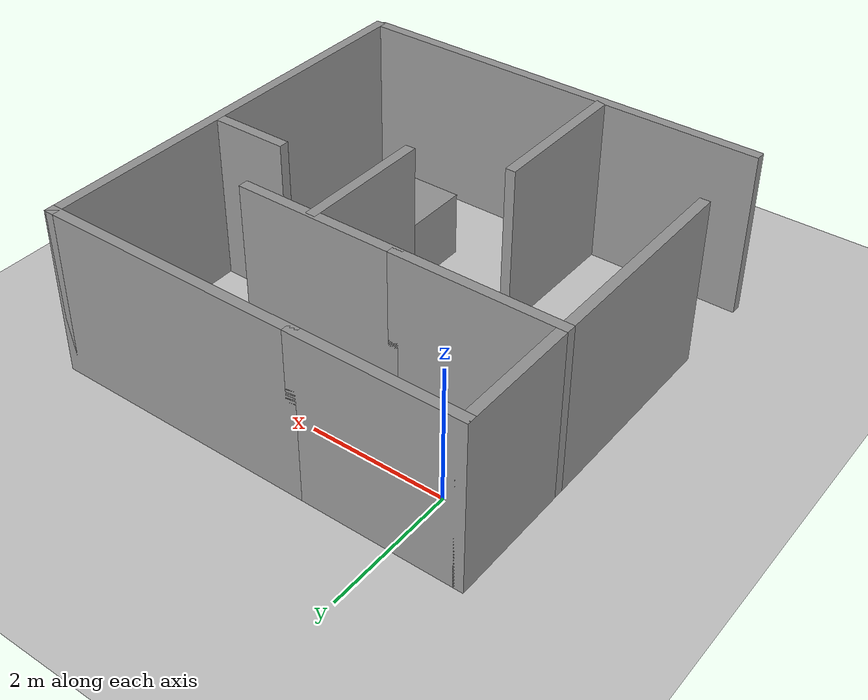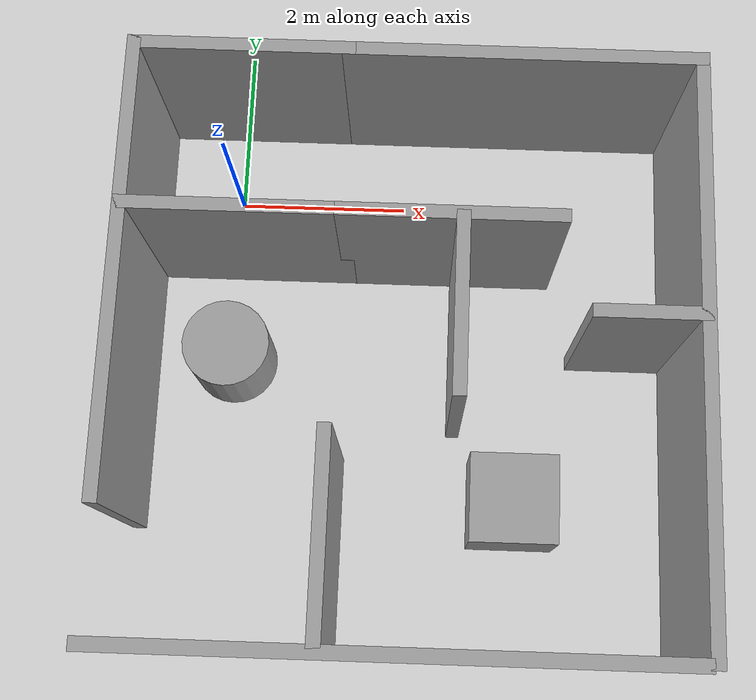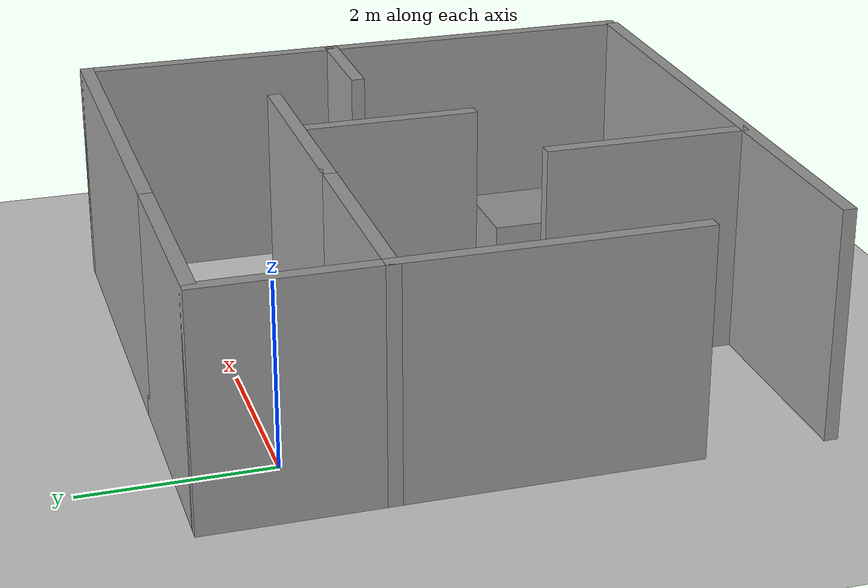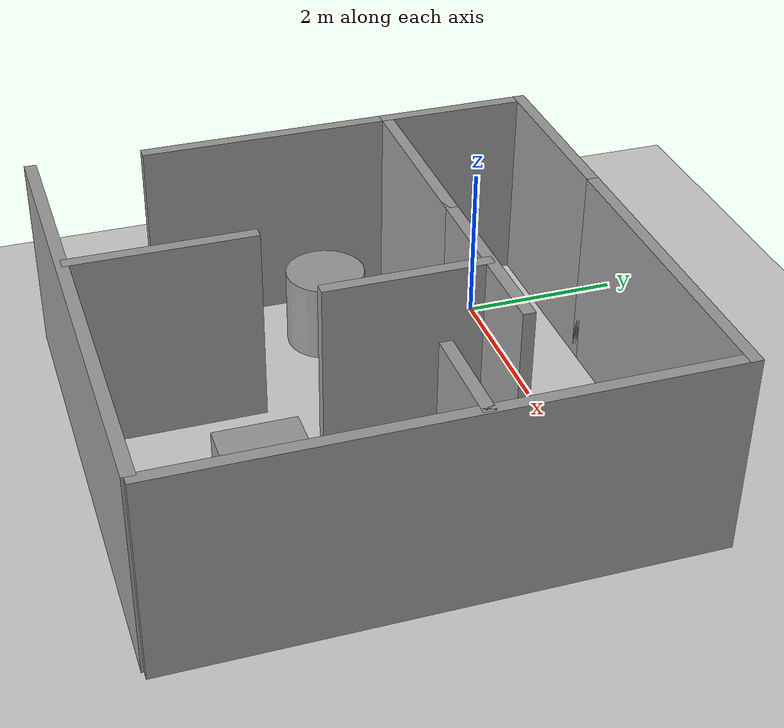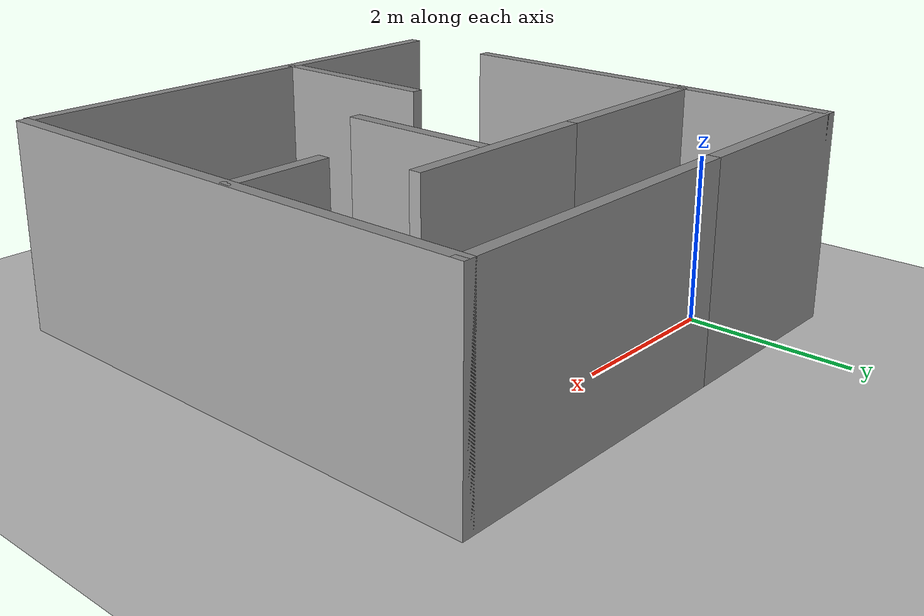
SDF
<sdf version="1.6">
 <world name="default">
  <light name="sun" type="directional">
   <pose>0 0 10 0 -0 0</pose>
   <diffuse>0.8 0.8 0.8 1</diffuse>
   <specular>0.2 0.2 0.2 1</specular>
   <attenuation>
    <range>1000</range>
    <constant>0.9</constant>
    <linear>0.01</linear>
    <quadratic>0.001</quadratic>
   </attenuation>
   <direction>-0.5 0.1 -0.9</direction>
  </light>
  <model name="ground_plane">
   <static>1</static>
   <link name="link">
    <collision name="collision">
     <geometry><plane><normal>0 0 1</normal><size>100 100</size></plane></geometry>
     <surface>
      <contact><collide_bitmask>65535</collide_bitmask></contact>
      <friction><ode><mu>100</mu><mu2>50</mu2></ode></friction>
     </surface>
    </collision>
    <visual name="visual">
     <cast_shadows>0</cast_shadows>
     <geometry><plane><normal>0 0 1</normal><size>100 100</size></plane></geometry>
     <material>
      <script><uri>file://media/materials/scripts/gazebo.material</uri><name>Gazebo/Grey</name></script>
     </material>
    </visual>
   </link>
  </model>
  <gravity>0 0 -9.8</gravity>
  <magnetic_field>6e-06 2.3e-05 -4.2e-05</magnetic_field>
  <atmosphere type="adiabatic"/>
  <physics name="default_physics" default="0" type="ode">
   <max_step_size>0.001</max_step_size>
   <real_time_factor>1</real_time_factor>
   <real_time_update_rate>1000</real_time_update_rate>
  </physics>
  <scene><ambient>0.4 0.4 0.4 1</ambient><background>0.7 0.7 0.7 1</background><shadows>1</shadows></scene>
  <audio><device>default</device></audio>
  <spherical_coordinates>
   <surface_model>EARTH_WGS84</surface_model>
   <latitude_deg>0</latitude_deg>
   <longitude_deg>0</longitude_deg>
   <elevation>0</elevation>
   <heading_deg>0</heading_deg>
  </spherical_coordinates>
  <model name="small">
   <pose>2.12687 -2.23051 0 0 -0 0</pose>
   <link name="Wall_0">
    <collision name="Wall_0_Collision">
     <geometry><box><size>2.5 0.15 2.5</size></box></geometry>
     <pose>0 0 1.25 0 -0 0</pose>
    </collision>
    <visual name="Wall_0_Visual">
     <pose>0 0 1.25 0 -0 0</pose>
     <geometry><box><size>2.5 0.15 2.5</size></box></geometry>
     <material>
      <script><uri>file://media/materials/scripts/gazebo.material</uri><name>Gazebo/Grey</name></script>
      <ambient>1 1 1 1</ambient>
     </material>
     <meta><layer>0</layer></meta>
    </visual>
    <pose>-1.92187 1.34051 0 0 -0 0</pose>
   </link>
   <link name="Wall_23">
    <collision name="Wall_23_Collision">
     <geometry><box><size>3.25 0.15 2.5</size></box></geometry>
     <pose>0 0 1.25 0 -0 0</pose>
    </collision>
    <visual name="Wall_23_Visual">
     <pose>0 0 1.25 0 -0 0</pose>
     <geometry><box><size>3.25 0.15 2.5</size></box></geometry>
     <material>
      <script><uri>file://media/materials/scripts/gazebo.material</uri><name>Gazebo/Grey</name></script>
      <ambient>1 1 1 1</ambient>
     </material>
     <meta><layer>0</layer></meta>
    </visual>
    <pose>-3.09687 -0.20949 0 0 -0 -1.5708</pose>
   </link>
   <link name="Wall_28">
    <collision name="Wall_28_Collision">
     <geometry><box><size>6.25 0.15 2.5</size></box></geometry>
     <pose>0 0 1.25 0 -0 0</pose>
    </collision>
    <visual name="Wall_28_Visual">
     <pose>0 0 1.25 0 -0 0</pose>
     <geometry><box><size>6.25 0.15 2.5</size></box></geometry>
     <material>
      <script><uri>file://media/materials/scripts/gazebo.material</uri><name>Gazebo/Grey</name></script>
      <ambient>1 1 1 1</ambient>
     </material>
     <meta><layer>0</layer></meta>
    </visual>
    <pose>-0.053131 -3.19051 0 0 -0 0</pose>
   </link>
   <link name="Wall_33">
    <collision name="Wall_33_Collision">
     <geometry><box><size>4 0.15 2.5</size></box></geometry>
     <pose>0 0 1.25 0 -0 0</pose>
    </collision>
    <visual name="Wall_33_Visual">
     <pose>0 0 1.25 0 -0 0</pose>
     <geometry><box><size>4 0.15 2.5</size></box></geometry>
     <material>
      <script><uri>file://media/materials/scripts/gazebo.material</uri><name>Gazebo/Grey</name></script>
      <ambient>1 1 1 1</ambient>
     </material>
     <meta><layer>0</layer></meta>
    </visual>
    <pose>1.17813 3.19051 0 0 -0 0</pose>
   </link>
   <link name="Wall_34">
    <collision name="Wall_34_Collision">
     <geometry><box><size>6.5 0.15 2.5</size></box></geometry>
     <pose>0 0 1.25 0 -0 0</pose>
    </collision>
    <visual name="Wall_34_Visual">
     <pose>0 0 1.25 0 -0 0</pose>
     <geometry><box><size>6.5 0.15 2.5</size></box></geometry>
     <material>
      <script><uri>file://media/materials/scripts/gazebo.material</uri><name>Gazebo/Grey</name></script>
      <ambient>1 1 1 1</ambient>
     </material>
     <meta><layer>0</layer></meta>
    </visual>
    <pose>3.10313 0.01551 0 0 -0 -1.5708</pose>
   </link>
   <link name="Wall_36">
    <collision name="Wall_36_Collision">
     <geometry><box><size>2.5 0.15 2.5</size></box></geometry>
     <pose>0 0 1.25 0 -0 0</pose>
    </collision>
    <visual name="Wall_36_Visual">
     <pose>0 0 1.25 0 -0 0</pose>
     <geometry><box><size>2.5 0.15 2.5</size></box></geometry>
     <material>
      <script><uri>file://media/materials/scripts/gazebo.material</uri><name>Gazebo/Grey</name></script>
      <ambient>1 1 1 1</ambient>
     </material>
     <meta><layer>0</layer></meta>
    </visual>
    <pose>0.42813 1.34051 0 0 -0 0</pose>
   </link>
   <link name="Wall_38">
    <collision name="Wall_38_Collision">
     <geometry><box><size>2 0.15 2.5</size></box></geometry>
     <pose>0 0 1.25 0 -0 0</pose>
    </collision>
    <visual name="Wall_38_Visual">
     <pose>0 0 1.25 0 -0 0</pose>
     <geometry><box><size>2 0.15 2.5</size></box></geometry>
     <material>
      <script><uri>file://media/materials/scripts/gazebo.material</uri><name>Gazebo/Grey</name></script>
      <ambient>1 1 1 1</ambient>
     </material>
     <meta><layer>0</layer></meta>
    </visual>
    <pose>0.549043 0.371446 0 0 -0 -1.5708</pose>
   </link>
   <link name="Wall_40">
    <collision name="Wall_40_Collision">
     <geometry><box><size>1.25 0.15 2.5</size></box></geometry>
     <pose>0 0 1.25 0 -0 0</pose>
    </collision>
    <visual name="Wall_40_Visual">
     <pose>0 0 1.25 0 -0 0</pose>
     <geometry><box><size>1.25 0.15 2.5</size></box></geometry>
     <material>
      <script><uri>file://media/materials/scripts/gazebo.material</uri><name>Gazebo/Grey</name></script>
      <ambient>1 1 1 1</ambient>
     </material>
     <meta><layer>0</layer></meta>
    </visual>
    <pose>2.52513 0.322533 0 0 -0 0</pose>
   </link>
   <link name="Wall_42">
    <collision name="Wall_42_Collision">
     <geometry><box><size>2.25 0.15 2.5</size></box></geometry>
     <pose>0 0 1.25 0 -0 0</pose>
    </collision>
    <visual name="Wall_42_Visual">
     <pose>0 0 1.25 0 -0 0</pose>
     <geometry><box><size>2.25 0.15 2.5</size></box></geometry>
     <material>
      <script><uri>file://media/materials/scripts/gazebo.material</uri><name>Gazebo/Grey</name></script>
      <ambient>1 1 1 1</ambient>
     </material>
     <meta><layer>0</layer></meta>
    </visual>
    <pose>-0.807478 -2.06877 0 0 -0 1.5708</pose>
   </link>
   <link name="Wall_6">
    <collision name="Wall_6_Collision">
     <geometry><box><size>2 0.15 2.5</size></box></geometry>
     <pose>0 0 1.25 0 -0 0</pose>
    </collision>
    <visual name="Wall_6_Visual">
     <pose>0 0 1.25 0 -0 0</pose>
     <geometry><box><size>2 0.15 2.5</size></box></geometry>
     <material>
      <script><uri>file://media/materials/scripts/gazebo.material</uri><name>Gazebo/Grey</name></script>
      <ambient>1 1 1 1</ambient>
     </material>
     <meta><layer>0</layer></meta>
    </visual>
    <pose>-3.09687 2.26551 0 0 -0 1.5708</pose>
   </link>
   <link name="Wall_7">
    <collision name="Wall_7_Collision">
     <geometry><box><size>2.5 0.15 2.5</size></box></geometry>
     <pose>0 0 1.25 0 -0 0</pose>
    </collision>
    <visual name="Wall_7_Visual">
     <pose>0 0 1.25 0 -0 0</pose>
     <geometry><box><size>2.5 0.15 2.5</size></box></geometry>
     <material>
      <script><uri>file://media/materials/scripts/gazebo.material</uri><name>Gazebo/Grey</name></script>
      <ambient>1 1 1 1</ambient>
     </material>
     <meta><layer>0</layer></meta>
    </visual>
    <pose>-1.92187 3.19051 0 0 -0 0</pose>
   </link>
   <static>1</static>
  </model>
  <model name="unit_box">
   <pose>3.36493 -3.68308 0.499995 -1e-05 -0 -0</pose>
   <link name="link">
    <inertial>
     <mass>1</mass>
     <inertia>
      <ixx>0.166667</ixx>
      <ixy>0</ixy>
      <ixz>0</ixz>
      <iyy>0.166667</iyy>
      <iyz>0</iyz>
      <izz>0.166667</izz>
     </inertia>
    </inertial>
    <collision name="collision"><geometry><box><size>1 1 1</size></box></geometry></collision>
    <visual name="visual">
     <geometry><box><size>1 1 1</size></box></geometry>
     <material>
      <script><name>Gazebo/Grey</name><uri>file://media/materials/scripts/gazebo.material</uri></script>
     </material>
    </visual>
   </link>
  </model>
  <model name="unit_cylinder">
   <pose>0.029667 -2.02265 0.499997 3e-06 4e-06 -0</pose>
   <link name="link">
    <inertial>
     <mass>1</mass>
     <inertia><ixx>0.145833</ixx><ixy>0</ixy><ixz>0</ixz><iyy>0.145833</iyy><iyz>0</iyz><izz>0.125</izz></inertia>
    </inertial>
    <collision name="collision">
     <geometry><cylinder><radius>0.5</radius><length>1</length></cylinder></geometry>
    </collision>
    <visual name="visual">
     <geometry><cylinder><radius>0.5</radius><length>1</length></cylinder></geometry>
     <material>
      <script><name>Gazebo/Grey</name><uri>file://media/materials/scripts/gazebo.material</uri></script>
     </material>
    </visual>
   </link>
  </model>
 </world>
</sdf>
